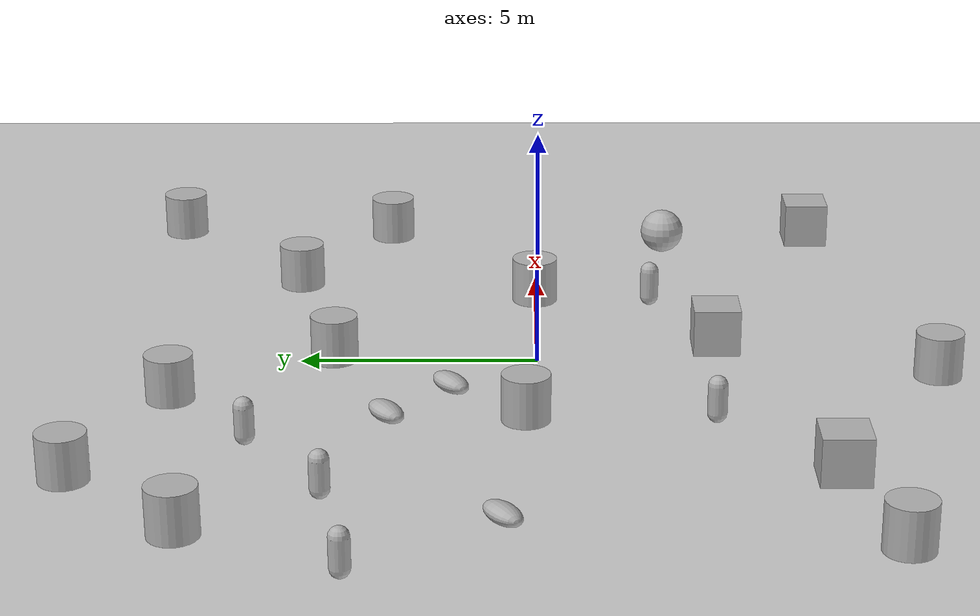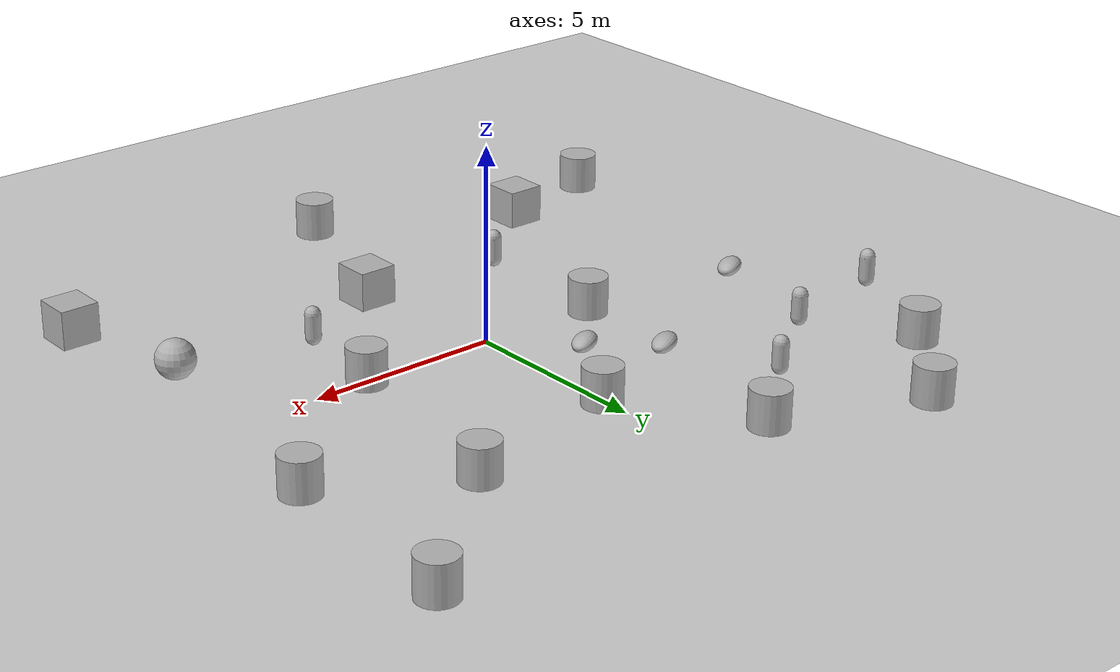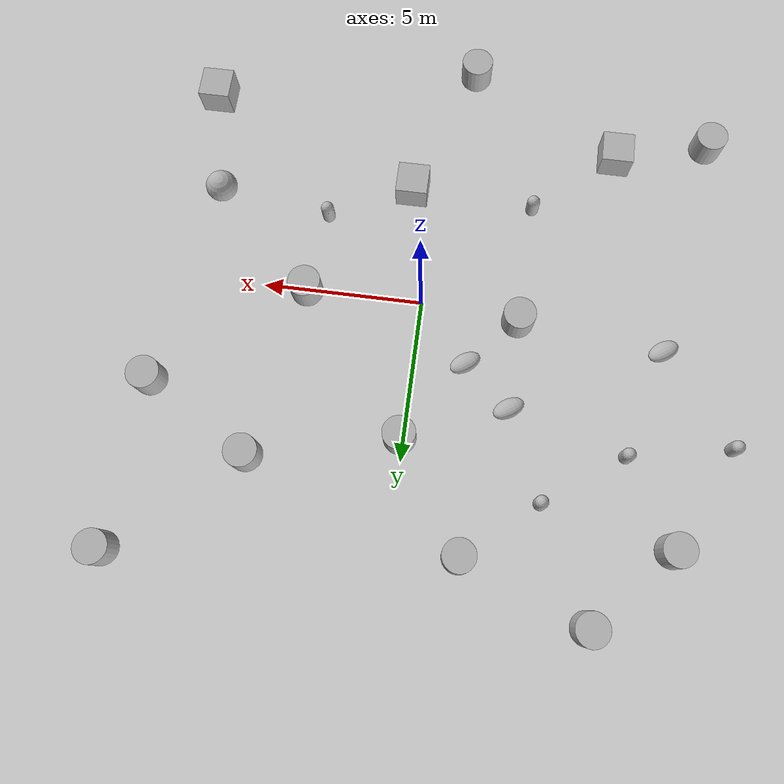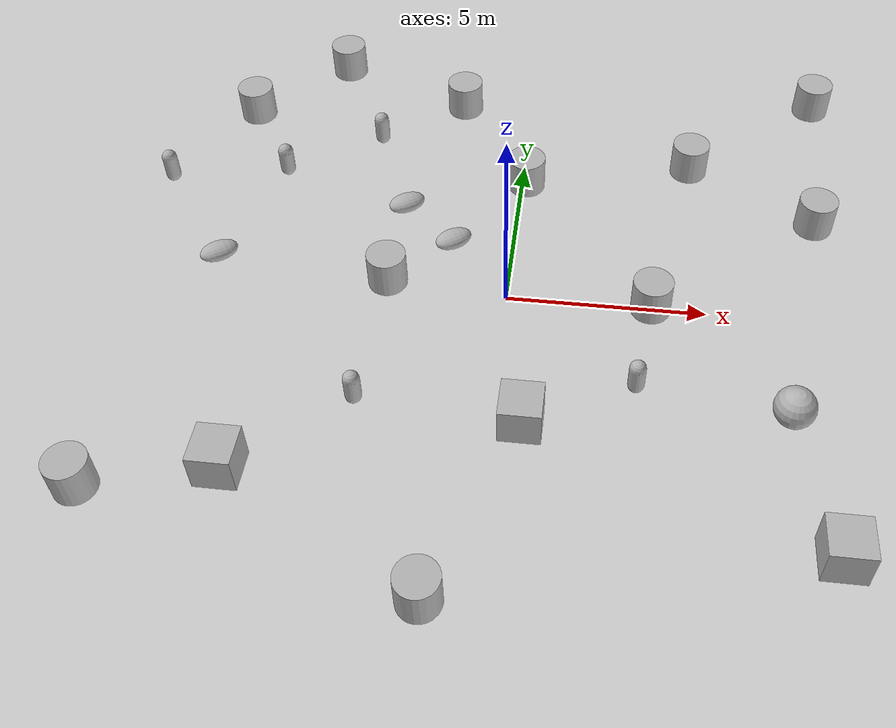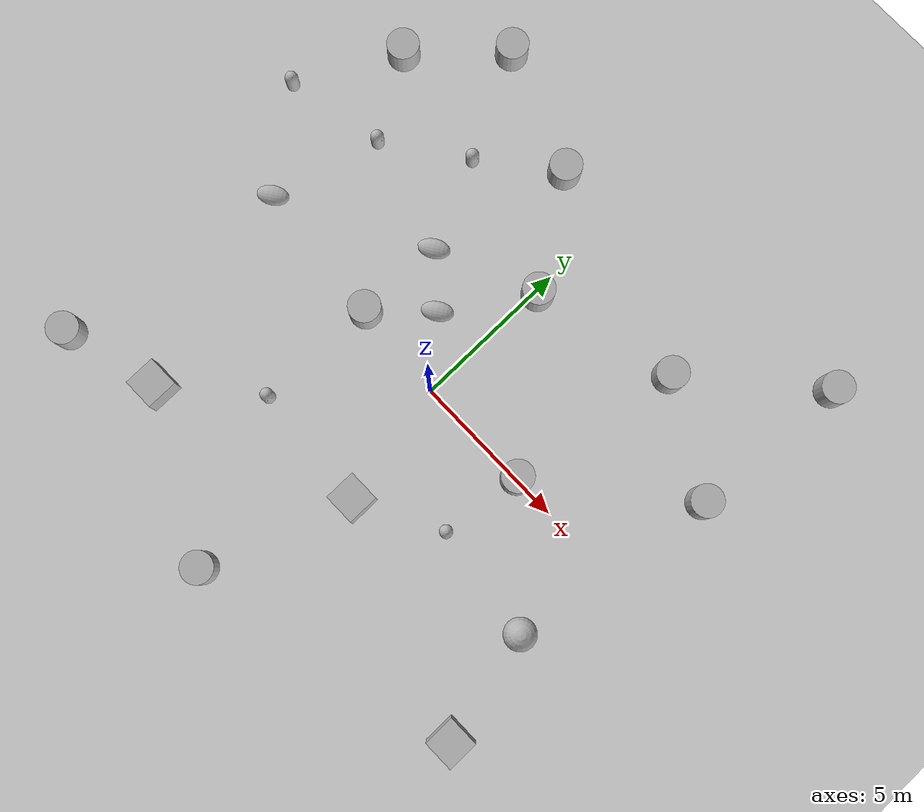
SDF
<sdf version='1.10'>
  <world name='default'>
    <physics name='sim_physics' type='ode'>
      <max_step_size>0.001</max_step_size>
      <real_time_factor>1</real_time_factor>
      <real_time_update_rate>1000</real_time_update_rate>
      <ode>
        <solver>
          <type>world</type>
          <iters>150</iters>
          <sor>1.3</sor>
          <use_dynamic_moi_rescaling>true</use_dynamic_moi_rescaling>
        </solver>
        <constraints>
          <cfm>0</cfm>
          <erp>0.20000000000000001</erp>
          <contact_max_correcting_vel>100</contact_max_correcting_vel>
          <contact_surface_layer>0.001</contact_surface_layer>
        </constraints>
      </ode>
    </physics>
    <scene>
      <ambient>0.400000006 0.400000006 0.400000006 1</ambient>
      <background>0.699999988 0.699999988 0.699999988 1</background>
      <shadows>true</shadows>
    </scene>
    <gravity>0 0 -9.8000000000000007</gravity>
    <magnetic_field>5.5644999999999998e-06 2.2875799999999999e-05 -4.2388400000000002e-05</magnetic_field>
    <atmosphere type='adiabatic'/>
    <model name='ground_plane'>
      <static>true</static>
      <link name='link'>
        <collision name='collision'>
          <geometry>
            <plane>
              <normal>0 0 1</normal>
              <size>100 100</size>
            </plane>
          </geometry>
          <surface>
            <friction>
              <ode>
                <mu>100</mu>
                <mu2>50</mu2>
              </ode>
            </friction>
            <contact>
              <ode>
                <kp>1000000</kp>
                <kd>1</kd>
              </ode>
            </contact>
            <bounce/>
          </surface>
        </collision>
        <visual name='visual'>
          <geometry>
            <plane>
              <normal>0 0 1</normal>
              <size>100 100</size>
            </plane>
          </geometry>
          <material>
            <ambient>0.800000012 0.800000012 0.800000012 1</ambient>
            <diffuse>0.800000012 0.800000012 0.800000012 1</diffuse>
            <specular>0.800000012 0.800000012 0.800000012 1</specular>
          </material>
        </visual>
        <pose>0 0 0 0 0 0</pose>
        <inertial>
          <pose>0 0 0 0 0 0</pose>
          <mass>1</mass>
          <inertia>
            <ixx>1</ixx>
            <ixy>0</ixy>
            <ixz>0</ixz>
            <iyy>1</iyy>
            <iyz>0</iyz>
            <izz>1</izz>
          </inertia>
        </inertial>
        <enable_wind>false</enable_wind>
      </link>
      <pose>0 0 0 0 0 0</pose>
      <self_collide>false</self_collide>
    </model>
    <model name='cylinder'>
      <pose>3.6178692231847749 0.034509293817874584 0.49999942638036005 -9.8729458758295527e-20 -8.354001073868927e-20 1.6830781853335937e-20</pose>
      <link name='cylinder_link'>
        <inertial>
          <inertia>
            <ixx>0.14580000000000001</ixx>
            <ixy>0</ixy>
            <ixz>0</ixz>
            <iyy>0.14580000000000001</iyy>
            <iyz>0</iyz>
            <izz>0.125</izz>
          </inertia>
          <mass>1</mass>
          <pose>0 0 0 0 0 0</pose>
        </inertial>
        <collision name='cylinder_collision'>
          <geometry>
            <cylinder>
              <radius>0.5</radius>
              <length>1</length>
            </cylinder>
          </geometry>
          <surface>
            <friction>
              <ode/>
            </friction>
            <bounce/>
            <contact/>
          </surface>
        </collision>
        <visual name='cylinder_visual'>
          <geometry>
            <cylinder>
              <radius>0.5</radius>
              <length>1</length>
            </cylinder>
          </geometry>
          <material>
            <ambient>0.300000012 0.300000012 0.300000012 1</ambient>
            <diffuse>0.699999988 0.699999988 0.699999988 1</diffuse>
            <specular>1 1 1 1</specular>
          </material>
        </visual>
        <pose>0 0 0 0 0 0</pose>
        <enable_wind>false</enable_wind>
      </link>
      <static>false</static>
      <self_collide>false</self_collide>
    </model>
    <model name='cylinder_0'>
      <pose>0.11156395615499681 4.3055628396417163 0.49999942638036005 3.2079311927980332e-19 6.0974033906819517e-21 -4.076697909539874e-21</pose>
      <link name='cylinder_link'>
        <inertial>
          <inertia>
            <ixx>0.14580000000000001</ixx>
            <ixy>0</ixy>
            <ixz>0</ixz>
            <iyy>0.14580000000000001</iyy>
            <iyz>0</iyz>
            <izz>0.125</izz>
          </inertia>
          <mass>1</mass>
          <pose>0 0 0 0 0 0</pose>
        </inertial>
        <collision name='cylinder_collision'>
          <geometry>
            <cylinder>
              <radius>0.5</radius>
              <length>1</length>
            </cylinder>
          </geometry>
          <surface>
            <friction>
              <ode/>
            </friction>
            <bounce/>
            <contact/>
          </surface>
        </collision>
        <visual name='cylinder_visual'>
          <geometry>
            <cylinder>
              <radius>0.5</radius>
              <length>1</length>
            </cylinder>
          </geometry>
          <material>
            <ambient>0.300000012 0.300000012 0.300000012 1</ambient>
            <diffuse>0.699999988 0.699999988 0.699999988 1</diffuse>
            <specular>1 1 1 1</specular>
          </material>
        </visual>
        <pose>0 0 0 0 0 0</pose>
        <enable_wind>false</enable_wind>
      </link>
      <static>false</static>
      <self_collide>false</self_collide>
    </model>
    <model name='box'>
      <pose>0.75378393458306014 -3.8342362190579307 0.49999999990199806 6.2287739151293738e-22 9.3279666454713669e-22 -3.6315533669320137e-22</pose>
      <link name='box_link'>
        <inertial>
          <inertia>
            <ixx>0.16666</ixx>
            <ixy>0</ixy>
            <ixz>0</ixz>
            <iyy>0.16666</iyy>
            <iyz>0</iyz>
            <izz>0.16666</izz>
          </inertia>
          <mass>1</mass>
          <pose>0 0 0 0 0 0</pose>
        </inertial>
        <collision name='box_collision'>
          <geometry>
            <box>
              <size>1 1 1</size>
            </box>
          </geometry>
          <surface>
            <friction>
              <ode/>
            </friction>
            <bounce/>
            <contact/>
          </surface>
        </collision>
        <visual name='box_visual'>
          <geometry>
            <box>
              <size>1 1 1</size>
            </box>
          </geometry>
          <material>
            <ambient>0.300000012 0.300000012 0.300000012 1</ambient>
            <diffuse>0.699999988 0.699999988 0.699999988 1</diffuse>
            <specular>1 1 1 1</specular>
          </material>
        </visual>
        <pose>0 0 0 0 0 0</pose>
        <enable_wind>false</enable_wind>
      </link>
      <static>false</static>
      <self_collide>false</self_collide>
    </model>
    <model name='cylinder_1'>
      <pose>-3.0464703151036341 0.24917872286233736 0.49999942638036005 1.5937450856901241e-19 1.2489610858275418e-19 2.288311768788453e-20</pose>
      <link name='cylinder_link'>
        <inertial>
          <inertia>
            <ixx>0.14580000000000001</ixx>
            <ixy>0</ixy>
            <ixz>0</ixz>
            <iyy>0.14580000000000001</iyy>
            <iyz>0</iyz>
            <izz>0.125</izz>
          </inertia>
          <mass>1</mass>
          <pose>0 0 0 0 0 0</pose>
        </inertial>
        <collision name='cylinder_collision'>
          <geometry>
            <cylinder>
              <radius>0.5</radius>
              <length>1</length>
            </cylinder>
          </geometry>
          <surface>
            <friction>
              <ode/>
            </friction>
            <bounce/>
            <contact/>
          </surface>
        </collision>
        <visual name='cylinder_visual'>
          <geometry>
            <cylinder>
              <radius>0.5</radius>
              <length>1</length>
            </cylinder>
          </geometry>
          <material>
            <ambient>0.300000012 0.300000012 0.300000012 1</ambient>
            <diffuse>0.699999988 0.699999988 0.699999988 1</diffuse>
            <specular>1 1 1 1</specular>
          </material>
        </visual>
        <pose>0 0 0 0 0 0</pose>
        <enable_wind>false</enable_wind>
      </link>
      <static>false</static>
      <self_collide>false</self_collide>
    </model>
    <model name='ellipsoid'>
      <pose>-3.0284203481312493 3.0400693529588834 0.18666844730014226 1.5707963147018615 -1.377492245063251 -1.0061579970504275</pose>
      <link name='ellipsoid_link'>
        <inertial>
          <inertia>
            <ixx>0.068000000000000005</ixx>
            <ixy>0</ixy>
            <ixz>0</ixz>
            <iyy>0.058000000000000003</iyy>
            <iyz>0</iyz>
            <izz>0.025999999999999999</izz>
          </inertia>
          <mass>1</mass>
          <pose>0 0 0 0 0 0</pose>
        </inertial>
        <collision name='ellipsoid_collision'>
          <geometry>
            <ellipsoid>
              <radii>0.20000000000000001 0.29999999999999999 0.5</radii>
            </ellipsoid>
          </geometry>
          <surface>
            <friction>
              <ode/>
            </friction>
            <bounce/>
            <contact/>
          </surface>
        </collision>
        <visual name='ellipsoid_visual'>
          <geometry>
            <ellipsoid>
              <radii>0.20000000000000001 0.29999999999999999 0.5</radii>
            </ellipsoid>
          </geometry>
          <material>
            <ambient>0.300000012 0.300000012 0.300000012 1</ambient>
            <diffuse>0.699999988 0.699999988 0.699999988 1</diffuse>
            <specular>1 1 1 1</specular>
          </material>
        </visual>
        <pose>0 0 0 0 0 0</pose>
        <enable_wind>false</enable_wind>
      </link>
      <static>false</static>
      <self_collide>false</self_collide>
    </model>
    <model name='cylinder_2'>
      <pose>4.5731077279194938 5.3755883394028494 0.49999942638036005 -5.0343813961059162e-20 2.3389529545969896e-19 -1.9637032367930218e-20</pose>
      <link name='cylinder_link'>
        <inertial>
          <inertia>
            <ixx>0.14580000000000001</ixx>
            <ixy>0</ixy>
            <ixz>0</ixz>
            <iyy>0.14580000000000001</iyy>
            <iyz>0</iyz>
            <izz>0.125</izz>
          </inertia>
          <mass>1</mass>
          <pose>0 0 0 0 0 0</pose>
        </inertial>
        <collision name='cylinder_collision'>
          <geometry>
            <cylinder>
              <radius>0.5</radius>
              <length>1</length>
            </cylinder>
          </geometry>
          <surface>
            <friction>
              <ode/>
            </friction>
            <bounce/>
            <contact/>
          </surface>
        </collision>
        <visual name='cylinder_visual'>
          <geometry>
            <cylinder>
              <radius>0.5</radius>
              <length>1</length>
            </cylinder>
          </geometry>
          <material>
            <ambient>0.300000012 0.300000012 0.300000012 1</ambient>
            <diffuse>0.699999988 0.699999988 0.699999988 1</diffuse>
            <specular>1 1 1 1</specular>
          </material>
        </visual>
        <pose>0 0 0 0 0 0</pose>
        <enable_wind>false</enable_wind>
      </link>
      <static>false</static>
      <self_collide>false</self_collide>
    </model>
    <model name='box_0'>
      <pose>7.6612092639568772 -6.5173526013434753 0.49999999990199806 6.2287739151293738e-22 9.3279666454713669e-22 -3.6315533669320137e-22</pose>
      <link name='box_link'>
        <inertial>
          <inertia>
            <ixx>0.16666</ixx>
            <ixy>0</ixy>
            <ixz>0</ixz>
            <iyy>0.16666</iyy>
            <iyz>0</iyz>
            <izz>0.16666</izz>
          </inertia>
          <mass>1</mass>
          <pose>0 0 0 0 0 0</pose>
        </inertial>
        <collision name='box_collision'>
          <geometry>
            <box>
              <size>1 1 1</size>
            </box>
          </geometry>
          <surface>
            <friction>
              <ode/>
            </friction>
            <bounce/>
            <contact/>
          </surface>
        </collision>
        <visual name='box_visual'>
          <geometry>
            <box>
              <size>1 1 1</size>
            </box>
          </geometry>
          <material>
            <ambient>0.300000012 0.300000012 0.300000012 1</ambient>
            <diffuse>0.699999988 0.699999988 0.699999988 1</diffuse>
            <specular>1 1 1 1</specular>
          </material>
        </visual>
        <pose>0 0 0 0 0 0</pose>
        <enable_wind>false</enable_wind>
      </link>
      <static>false</static>
      <self_collide>false</self_collide>
    </model>
    <model name='cylinder_3'>
      <pose>7.876293319820844 3.4530204363175043 0.49999942638036005 8.0565647861001429e-20 -2.5073506670928949e-19 -2.5835514857301953e-20</pose>
      <link name='cylinder_link'>
        <inertial>
          <inertia>
            <ixx>0.14580000000000001</ixx>
            <ixy>0</ixy>
            <ixz>0</ixz>
            <iyy>0.14580000000000001</iyy>
            <iyz>0</iyz>
            <izz>0.125</izz>
          </inertia>
          <mass>1</mass>
          <pose>0 0 0 0 0 0</pose>
        </inertial>
        <collision name='cylinder_collision'>
          <geometry>
            <cylinder>
              <radius>0.5</radius>
              <length>1</length>
            </cylinder>
          </geometry>
          <surface>
            <friction>
              <ode/>
            </friction>
            <bounce/>
            <contact/>
          </surface>
        </collision>
        <visual name='cylinder_visual'>
          <geometry>
            <cylinder>
              <radius>0.5</radius>
              <length>1</length>
            </cylinder>
          </geometry>
          <material>
            <ambient>0.300000012 0.300000012 0.300000012 1</ambient>
            <diffuse>0.699999988 0.699999988 0.699999988 1</diffuse>
            <specular>1 1 1 1</specular>
          </material>
        </visual>
        <pose>0 0 0 0 0 0</pose>
        <enable_wind>false</enable_wind>
      </link>
      <static>false</static>
      <self_collide>false</self_collide>
    </model>
    <model name='sphere'>
      <pose>6.8814438517412349 -3.0307289326179072 0.499999999902001 0 0 0</pose>
      <link name='sphere_link'>
        <inertial>
          <inertia>
            <ixx>0.10000000000000001</ixx>
            <ixy>0</ixy>
            <ixz>0</ixz>
            <iyy>0.10000000000000001</iyy>
            <iyz>0</iyz>
            <izz>0.10000000000000001</izz>
          </inertia>
          <mass>1</mass>
          <pose>0 0 0 0 0 0</pose>
        </inertial>
        <collision name='sphere_collision'>
          <geometry>
            <sphere>
              <radius>0.5</radius>
            </sphere>
          </geometry>
          <surface>
            <friction>
              <ode/>
            </friction>
            <bounce/>
            <contact/>
          </surface>
        </collision>
        <visual name='sphere_visual'>
          <geometry>
            <sphere>
              <radius>0.5</radius>
            </sphere>
          </geometry>
          <material>
            <ambient>0.300000012 0.300000012 0.300000012 1</ambient>
            <diffuse>0.699999988 0.699999988 0.699999988 1</diffuse>
            <specular>1 1 1 1</specular>
          </material>
        </visual>
        <pose>0 0 0 0 0 0</pose>
        <enable_wind>false</enable_wind>
      </link>
      <static>false</static>
      <self_collide>false</self_collide>
    </model>
    <model name='box_1'>
      <pose>-5.6830866236794435 -5.7554329088500866 0.49999999990199806 6.2287739151293738e-22 9.3279666454713669e-22 -3.6315533669320137e-22</pose>
      <link name='box_link'>
        <inertial>
          <inertia>
            <ixx>0.16666</ixx>
            <ixy>0</ixy>
            <ixz>0</ixz>
            <iyy>0.16666</iyy>
            <iyz>0</iyz>
            <izz>0.16666</izz>
          </inertia>
          <mass>1</mass>
          <pose>0 0 0 0 0 0</pose>
        </inertial>
        <collision name='box_collision'>
          <geometry>
            <box>
              <size>1 1 1</size>
            </box>
          </geometry>
          <surface>
            <friction>
              <ode/>
            </friction>
            <bounce/>
            <contact/>
          </surface>
        </collision>
        <visual name='box_visual'>
          <geometry>
            <box>
              <size>1 1 1</size>
            </box>
          </geometry>
          <material>
            <ambient>0.300000012 0.300000012 0.300000012 1</ambient>
            <diffuse>0.699999988 0.699999988 0.699999988 1</diffuse>
            <specular>1 1 1 1</specular>
          </material>
        </visual>
        <pose>0 0 0 0 0 0</pose>
        <enable_wind>false</enable_wind>
      </link>
      <static>false</static>
      <self_collide>false</self_collide>
    </model>
    <model name='ellipsoid_0'>
      <pose>-7.5777833655402889 0.67613189910657723 0.18666846731732517 1.5707963109802907 -1.377486867572955 -0.97081123742113096</pose>
      <link name='ellipsoid_link'>
        <inertial>
          <inertia>
            <ixx>0.068000000000000005</ixx>
            <ixy>0</ixy>
            <ixz>0</ixz>
            <iyy>0.058000000000000003</iyy>
            <iyz>0</iyz>
            <izz>0.025999999999999999</izz>
          </inertia>
          <mass>1</mass>
          <pose>0 0 0 0 0 0</pose>
        </inertial>
        <collision name='ellipsoid_collision'>
          <geometry>
            <ellipsoid>
              <radii>0.20000000000000001 0.29999999999999999 0.5</radii>
            </ellipsoid>
          </geometry>
          <surface>
            <friction>
              <ode/>
            </friction>
            <bounce/>
            <contact/>
          </surface>
        </collision>
        <visual name='ellipsoid_visual'>
          <geometry>
            <ellipsoid>
              <radii>0.20000000000000001 0.29999999999999999 0.5</radii>
            </ellipsoid>
          </geometry>
          <material>
            <ambient>0.300000012 0.300000012 0.300000012 1</ambient>
            <diffuse>0.699999988 0.699999988 0.699999988 1</diffuse>
            <specular>1 1 1 1</specular>
          </material>
        </visual>
        <pose>0 0 0 0 0 0</pose>
        <enable_wind>false</enable_wind>
      </link>
      <static>false</static>
      <self_collide>false</self_collide>
    </model>
    <model name='ellipsoid_1'>
      <pose>-1.5758349639930345 1.7903755091086473 0.18666845588062841 1.5707963122402679 -1.3774870593030994 -0.96608948281493257</pose>
      <link name='ellipsoid_link'>
        <inertial>
          <inertia>
            <ixx>0.068000000000000005</ixx>
            <ixy>0</ixy>
            <ixz>0</ixz>
            <iyy>0.058000000000000003</iyy>
            <iyz>0</iyz>
            <izz>0.025999999999999999</izz>
          </inertia>
          <mass>1</mass>
          <pose>0 0 0 0 0 0</pose>
        </inertial>
        <collision name='ellipsoid_collision'>
          <geometry>
            <ellipsoid>
              <radii>0.20000000000000001 0.29999999999999999 0.5</radii>
            </ellipsoid>
          </geometry>
          <surface>
            <friction>
              <ode/>
            </friction>
            <bounce/>
            <contact/>
          </surface>
        </collision>
        <visual name='ellipsoid_visual'>
          <geometry>
            <ellipsoid>
              <radii>0.20000000000000001 0.29999999999999999 0.5</radii>
            </ellipsoid>
          </geometry>
          <material>
            <ambient>0.300000012 0.300000012 0.300000012 1</ambient>
            <diffuse>0.699999988 0.699999988 0.699999988 1</diffuse>
            <specular>1 1 1 1</specular>
          </material>
        </visual>
        <pose>0 0 0 0 0 0</pose>
        <enable_wind>false</enable_wind>
      </link>
      <static>false</static>
      <self_collide>false</self_collide>
    </model>
    <model name='capsule'>
      <pose>-4.1862553689111799 5.7445099299968714 0.499999999902001 0 0 0</pose>
      <link name='capsule_link'>
        <inertial>
          <inertia>
            <ixx>0.074153999999999998</ixx>
            <ixy>0</ixy>
            <ixz>0</ixz>
            <iyy>0.074153999999999998</iyy>
            <iyz>0</iyz>
            <izz>0.018769000000000001</izz>
          </inertia>
          <mass>1</mass>
          <pose>0 0 0 0 0 0</pose>
        </inertial>
        <collision name='capsule_collision'>
          <geometry>
            <capsule>
              <radius>0.20000000000000001</radius>
              <length>0.59999999999999998</length>
            </capsule>
          </geometry>
          <surface>
            <friction>
              <ode/>
            </friction>
            <bounce/>
            <contact/>
          </surface>
        </collision>
        <visual name='capsule_visual'>
          <geometry>
            <capsule>
              <radius>0.20000000000000001</radius>
              <length>0.59999999999999998</length>
            </capsule>
          </geometry>
          <material>
            <ambient>0.300000012 0.300000012 0.300000012 1</ambient>
            <diffuse>0.699999988 0.699999988 0.699999988 1</diffuse>
            <specular>1 1 1 1</specular>
          </material>
        </visual>
        <pose>0 0 0 0 0 0</pose>
        <enable_wind>false</enable_wind>
      </link>
      <static>false</static>
      <self_collide>false</self_collide>
    </model>
    <model name='capsule_0'>
      <pose>3.316359958247336 -2.5412521234171672 0.499999999902001 0 0 0</pose>
      <link name='capsule_link'>
        <inertial>
          <inertia>
            <ixx>0.074153999999999998</ixx>
            <ixy>0</ixy>
            <ixz>0</ixz>
            <iyy>0.074153999999999998</iyy>
            <iyz>0</iyz>
            <izz>0.018769000000000001</izz>
          </inertia>
          <mass>1</mass>
          <pose>0 0 0 0 0 0</pose>
        </inertial>
        <collision name='capsule_collision'>
          <geometry>
            <capsule>
              <radius>0.20000000000000001</radius>
              <length>0.59999999999999998</length>
            </capsule>
          </geometry>
          <surface>
            <friction>
              <ode/>
            </friction>
            <bounce/>
            <contact/>
          </surface>
        </collision>
        <visual name='capsule_visual'>
          <geometry>
            <capsule>
              <radius>0.20000000000000001</radius>
              <length>0.59999999999999998</length>
            </capsule>
          </geometry>
          <material>
            <ambient>0.300000012 0.300000012 0.300000012 1</ambient>
            <diffuse>0.699999988 0.699999988 0.699999988 1</diffuse>
            <specular>1 1 1 1</specular>
          </material>
        </visual>
        <pose>0 0 0 0 0 0</pose>
        <enable_wind>false</enable_wind>
      </link>
      <static>false</static>
      <self_collide>false</self_collide>
    </model>
    <model name='cylinder_4'>
      <pose>-2.0105708642833928 7.5068697081600106 0.49999942638036005 1.3354472036527853e-19 -4.3131635501106182e-19 8.5135205078810897e-21</pose>
      <link name='cylinder_link'>
        <inertial>
          <inertia>
            <ixx>0.14580000000000001</ixx>
            <ixy>0</ixy>
            <ixz>0</ixz>
            <iyy>0.14580000000000001</iyy>
            <iyz>0</iyz>
            <izz>0.125</izz>
          </inertia>
          <mass>1</mass>
          <pose>0 0 0 0 0 0</pose>
        </inertial>
        <collision name='cylinder_collision'>
          <geometry>
            <cylinder>
              <radius>0.5</radius>
              <length>1</length>
            </cylinder>
          </geometry>
          <surface>
            <friction>
              <ode/>
            </friction>
            <bounce/>
            <contact/>
          </surface>
        </collision>
        <visual name='cylinder_visual'>
          <geometry>
            <cylinder>
              <radius>0.5</radius>
              <length>1</length>
            </cylinder>
          </geometry>
          <material>
            <ambient>0.300000012 0.300000012 0.300000012 1</ambient>
            <diffuse>0.699999988 0.699999988 0.699999988 1</diffuse>
            <specular>1 1 1 1</specular>
          </material>
        </visual>
        <pose>0 0 0 0 0 0</pose>
        <enable_wind>false</enable_wind>
      </link>
      <static>false</static>
      <self_collide>false</self_collide>
    </model>
    <model name='cylinder_5'>
      <pose>-8.0827140351768278 6.5961038437116066 0.49999942638036005 4.1787422356063584e-19 -3.7897023771737712e-20 -1.1908605107439979e-20</pose>
      <link name='cylinder_link'>
        <inertial>
          <inertia>
            <ixx>0.14580000000000001</ixx>
            <ixy>0</ixy>
            <ixz>0</ixz>
            <iyy>0.14580000000000001</iyy>
            <iyz>0</iyz>
            <izz>0.125</izz>
          </inertia>
          <mass>1</mass>
          <pose>0 0 0 0 0 0</pose>
        </inertial>
        <collision name='cylinder_collision'>
          <geometry>
            <cylinder>
              <radius>0.5</radius>
              <length>1</length>
            </cylinder>
          </geometry>
          <surface>
            <friction>
              <ode/>
            </friction>
            <bounce/>
            <contact/>
          </surface>
        </collision>
        <visual name='cylinder_visual'>
          <geometry>
            <cylinder>
              <radius>0.5</radius>
              <length>1</length>
            </cylinder>
          </geometry>
          <material>
            <ambient>0.300000012 0.300000012 0.300000012 1</ambient>
            <diffuse>0.699999988 0.699999988 0.699999988 1</diffuse>
            <specular>1 1 1 1</specular>
          </material>
        </visual>
        <pose>0 0 0 0 0 0</pose>
        <enable_wind>false</enable_wind>
      </link>
      <static>false</static>
      <self_collide>false</self_collide>
    </model>
    <model name='cylinder_6'>
      <pose>-8.6760270537969504 -6.5307749075027761 0.49999942638036005 6.4098679567739648e-21 1.4283200615537853e-19 -5.390021117541228e-21</pose>
      <link name='cylinder_link'>
        <inertial>
          <inertia>
            <ixx>0.14580000000000001</ixx>
            <ixy>0</ixy>
            <ixz>0</ixz>
            <iyy>0.14580000000000001</iyy>
            <iyz>0</iyz>
            <izz>0.125</izz>
          </inertia>
          <mass>1</mass>
          <pose>0 0 0 0 0 0</pose>
        </inertial>
        <collision name='cylinder_collision'>
          <geometry>
            <cylinder>
              <radius>0.5</radius>
              <length>1</length>
            </cylinder>
          </geometry>
          <surface>
            <friction>
              <ode/>
            </friction>
            <bounce/>
            <contact/>
          </surface>
        </collision>
        <visual name='cylinder_visual'>
          <geometry>
            <cylinder>
              <radius>0.5</radius>
              <length>1</length>
            </cylinder>
          </geometry>
          <material>
            <ambient>0.300000012 0.300000012 0.300000012 1</ambient>
            <diffuse>0.699999988 0.699999988 0.699999988 1</diffuse>
            <specular>1 1 1 1</specular>
          </material>
        </visual>
        <pose>0 0 0 0 0 0</pose>
        <enable_wind>false</enable_wind>
      </link>
      <static>false</static>
      <self_collide>false</self_collide>
    </model>
    <model name='cylinder_7'>
      <pose>-0.84588679754598495 -8.3603594019449972 0.49999942638036005 -2.0164046514041325e-19 -7.6914810411315389e-20 4.0501226254738311e-21</pose>
      <link name='cylinder_link'>
        <inertial>
          <inertia>
            <ixx>0.14580000000000001</ixx>
            <ixy>0</ixy>
            <ixz>0</ixz>
            <iyy>0.14580000000000001</iyy>
            <iyz>0</iyz>
            <izz>0.125</izz>
          </inertia>
          <mass>1</mass>
          <pose>0 0 0 0 0 0</pose>
        </inertial>
        <collision name='cylinder_collision'>
          <geometry>
            <cylinder>
              <radius>0.5</radius>
              <length>1</length>
            </cylinder>
          </geometry>
          <surface>
            <friction>
              <ode/>
            </friction>
            <bounce/>
            <contact/>
          </surface>
        </collision>
        <visual name='cylinder_visual'>
          <geometry>
            <cylinder>
              <radius>0.5</radius>
              <length>1</length>
            </cylinder>
          </geometry>
          <material>
            <ambient>0.300000012 0.300000012 0.300000012 1</ambient>
            <diffuse>0.699999988 0.699999988 0.699999988 1</diffuse>
            <specular>1 1 1 1</specular>
          </material>
        </visual>
        <pose>0 0 0 0 0 0</pose>
        <enable_wind>false</enable_wind>
      </link>
      <static>false</static>
      <self_collide>false</self_collide>
    </model>
    <model name='cylinder_8'>
      <pose>8.1912433644769607 8.527790415691598 0.49999942638036005 -1.0750397863661576e-21 -5.7401687070692267e-20 1.1641079945611398e-20</pose>
      <link name='cylinder_link'>
        <inertial>
          <inertia>
            <ixx>0.14580000000000001</ixx>
            <ixy>0</ixy>
            <ixz>0</ixz>
            <iyy>0.14580000000000001</iyy>
            <iyz>0</iyz>
            <izz>0.125</izz>
          </inertia>
          <mass>1</mass>
          <pose>0 0 0 0 0 0</pose>
        </inertial>
        <collision name='cylinder_collision'>
          <geometry>
            <cylinder>
              <radius>0.5</radius>
              <length>1</length>
            </cylinder>
          </geometry>
          <surface>
            <friction>
              <ode/>
            </friction>
            <bounce/>
            <contact/>
          </surface>
        </collision>
        <visual name='cylinder_visual'>
          <geometry>
            <cylinder>
              <radius>0.5</radius>
              <length>1</length>
            </cylinder>
          </geometry>
          <material>
            <ambient>0.300000012 0.300000012 0.300000012 1</ambient>
            <diffuse>0.699999988 0.699999988 0.699999988 1</diffuse>
            <specular>1 1 1 1</specular>
          </material>
        </visual>
        <pose>0 0 0 0 0 0</pose>
        <enable_wind>false</enable_wind>
      </link>
      <static>false</static>
      <self_collide>false</self_collide>
    </model>
    <model name='cylinder_9'>
      <pose>-5.809110811095394 8.9835728493224991 0.49999942638036005 7.9646511616607374e-20 6.0409955251285049e-20 -1.979292299034991e-21</pose>
      <link name='cylinder_link'>
        <inertial>
          <inertia>
            <ixx>0.14580000000000001</ixx>
            <ixy>0</ixy>
            <ixz>0</ixz>
            <iyy>0.14580000000000001</iyy>
            <iyz>0</iyz>
            <izz>0.125</izz>
          </inertia>
          <mass>1</mass>
          <pose>0 0 0 0 0 0</pose>
        </inertial>
        <collision name='cylinder_collision'>
          <geometry>
            <cylinder>
              <radius>0.5</radius>
              <length>1</length>
            </cylinder>
          </geometry>
          <surface>
            <friction>
              <ode/>
            </friction>
            <bounce/>
            <contact/>
          </surface>
        </collision>
        <visual name='cylinder_visual'>
          <geometry>
            <cylinder>
              <radius>0.5</radius>
              <length>1</length>
            </cylinder>
          </geometry>
          <material>
            <ambient>0.300000012 0.300000012 0.300000012 1</ambient>
            <diffuse>0.699999988 0.699999988 0.699999988 1</diffuse>
            <specular>1 1 1 1</specular>
          </material>
        </visual>
        <pose>0 0 0 0 0 0</pose>
        <enable_wind>false</enable_wind>
      </link>
      <static>false</static>
      <self_collide>false</self_collide>
    </model>
    <model name='capsule_1'>
      <pose>-6.5759920820057172 4.0853292836068942 0.499999999902001 0 0 0</pose>
      <link name='capsule_link'>
        <inertial>
          <inertia>
            <ixx>0.074153999999999998</ixx>
            <ixy>0</ixy>
            <ixz>0</ixz>
            <iyy>0.074153999999999998</iyy>
            <iyz>0</iyz>
            <izz>0.018769000000000001</izz>
          </inertia>
          <mass>1</mass>
          <pose>0 0 0 0 0 0</pose>
        </inertial>
        <collision name='capsule_collision'>
          <geometry>
            <capsule>
              <radius>0.20000000000000001</radius>
              <length>0.59999999999999998</length>
            </capsule>
          </geometry>
          <surface>
            <friction>
              <ode/>
            </friction>
            <bounce/>
            <contact/>
          </surface>
        </collision>
        <visual name='capsule_visual'>
          <geometry>
            <capsule>
              <radius>0.20000000000000001</radius>
              <length>0.59999999999999998</length>
            </capsule>
          </geometry>
          <material>
            <ambient>0.300000012 0.300000012 0.300000012 1</ambient>
            <diffuse>0.699999988 0.699999988 0.699999988 1</diffuse>
            <specular>1 1 1 1</specular>
          </material>
        </visual>
        <pose>0 0 0 0 0 0</pose>
        <enable_wind>false</enable_wind>
      </link>
      <static>false</static>
      <self_collide>false</self_collide>
    </model>
    <model name='capsule_2'>
      <pose>-9.6905130078676205 3.4835900602419336 0.499999999902001 0 0 0</pose>
      <link name='capsule_link'>
        <inertial>
          <inertia>
            <ixx>0.074153999999999998</ixx>
            <ixy>0</ixy>
            <ixz>0</ixz>
            <iyy>0.074153999999999998</iyy>
            <iyz>0</iyz>
            <izz>0.018769000000000001</izz>
          </inertia>
          <mass>1</mass>
          <pose>0 0 0 0 0 0</pose>
        </inertial>
        <collision name='capsule_collision'>
          <geometry>
            <capsule>
              <radius>0.20000000000000001</radius>
              <length>0.59999999999999998</length>
            </capsule>
          </geometry>
          <surface>
            <friction>
              <ode/>
            </friction>
            <bounce/>
            <contact/>
          </surface>
        </collision>
        <visual name='capsule_visual'>
          <geometry>
            <capsule>
              <radius>0.20000000000000001</radius>
              <length>0.59999999999999998</length>
            </capsule>
          </geometry>
          <material>
            <ambient>0.300000012 0.300000012 0.300000012 1</ambient>
            <diffuse>0.699999988 0.699999988 0.699999988 1</diffuse>
            <specular>1 1 1 1</specular>
          </material>
        </visual>
        <pose>0 0 0 0 0 0</pose>
        <enable_wind>false</enable_wind>
      </link>
      <static>false</static>
      <self_collide>false</self_collide>
    </model>
    <model name='capsule_3'>
      <pose>-3.1506659432245669 -3.5647888372393375 0.499999999902001 0 0 0</pose>
      <link name='capsule_link'>
        <inertial>
          <inertia>
            <ixx>0.074153999999999998</ixx>
            <ixy>0</ixy>
            <ixz>0</ixz>
            <iyy>0.074153999999999998</iyy>
            <iyz>0</iyz>
            <izz>0.018769000000000001</izz>
          </inertia>
          <mass>1</mass>
          <pose>0 0 0 0 0 0</pose>
        </inertial>
        <collision name='capsule_collision'>
          <geometry>
            <capsule>
              <radius>0.20000000000000001</radius>
              <length>0.59999999999999998</length>
            </capsule>
          </geometry>
          <surface>
            <friction>
              <ode/>
            </friction>
            <bounce/>
            <contact/>
          </surface>
        </collision>
        <visual name='capsule_visual'>
          <geometry>
            <capsule>
              <radius>0.20000000000000001</radius>
              <length>0.59999999999999998</length>
            </capsule>
          </geometry>
          <material>
            <ambient>0.300000012 0.300000012 0.300000012 1</ambient>
            <diffuse>0.699999988 0.699999988 0.699999988 1</diffuse>
            <specular>1 1 1 1</specular>
          </material>
        </visual>
        <pose>0 0 0 0 0 0</pose>
        <enable_wind>false</enable_wind>
      </link>
      <static>false</static>
      <self_collide>false</self_collide>
    </model>
    <light name='sun' type='directional'>
      <pose>0 0 10 0 0 0</pose>
      <cast_shadows>true</cast_shadows>
      <intensity>1</intensity>
      <direction>-0.5 0.10000000000000001 -0.90000000000000002</direction>
      <diffuse>0.800000012 0.800000012 0.800000012 1</diffuse>
      <specular>0.300000012 0.300000012 0.300000012 1</specular>
      <attenuation>
        <range>1000</range>
        <linear>0.01</linear>
        <constant>0.90000000000000002</constant>
        <quadratic>0.001</quadratic>
      </attenuation>
      <spot>
        <inner_angle>0</inner_angle>
        <outer_angle>0</outer_angle>
        <falloff>0</falloff>
      </spot>
    </light>
  </world>
</sdf>
